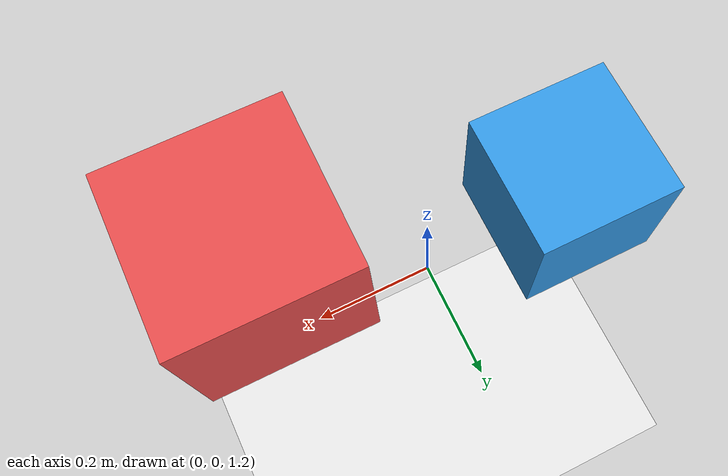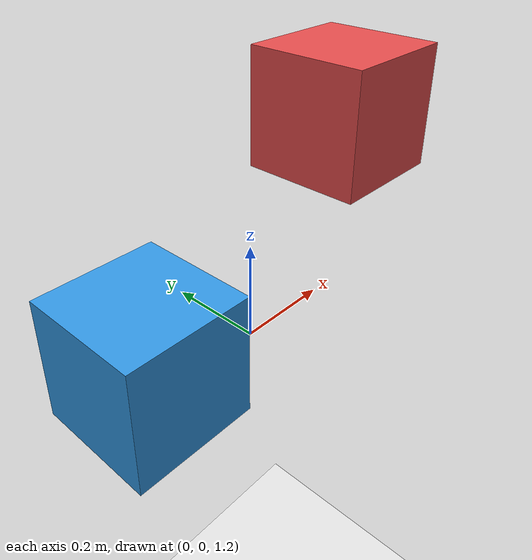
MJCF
<mujoco model="collisions_demo">
  <option timestep="0.002"/>
  <worldbody>
    <geom type="plane" size="5 5 0.1" rgba="0.9 0.9 0.9 1"/>
    <body name="boxA" pos="-0.25 0 1.3">
      <joint type="free"/>
      <geom type="box" size="0.12 0.12 0.12" rgba="0.2 0.6 0.9 1"/>
    </body>
    <body name="boxB" pos="0.25 0 1.6">
      <joint type="free"/>
      <geom type="box" size="0.12 0.12 0.12" rgba="0.9 0.3 0.3 1"/>
    </body>
  </worldbody>
</mujoco>
